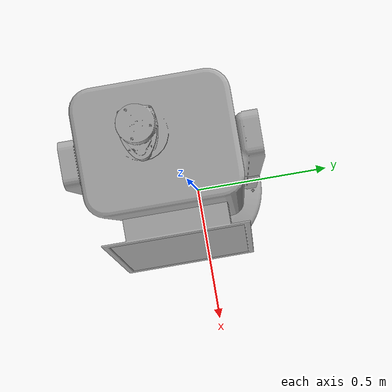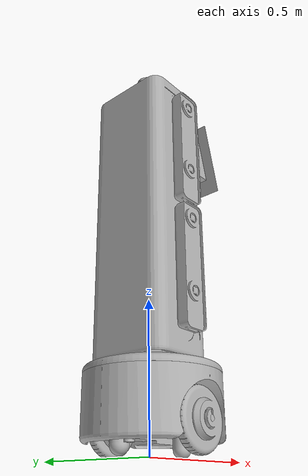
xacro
<?xml version="1.0" ?>
<robot name="bot_2" xmlns:xacro="http://www.ros.org/wiki/xacro">

<xacro:include filename="$(find bot_2_description)/urdf/materials.xacro" />
<xacro:include filename="$(find bot_2_description)/urdf/bot_2.trans" />
<xacro:include filename="$(find bot_2_description)/urdf/bot_2.gazebo" />
<link name="base_link">
  <inertial>
    <origin rpy="0 0 0" xyz="0.03952093569949327 0.011134712474763163 0.24999259249495898"/>
    <mass value="18.472238854712504"/>
    <inertia ixx="1.623002" ixy="0.000759" ixz="-0.069266" iyy="1.715272" iyz="-0.01153" izz="0.489429"/>
  </inertial>
  <visual>
    <origin rpy="0 0 0" xyz="0 0 0"/>
    <geometry>
      <mesh filename="package://bot_2_description/meshes/base_link.stl" scale="0.001 0.001 0.001"/>
    </geometry>
    <material name="silver"/>
  </visual>
  <collision>
    <origin rpy="0 0 0" xyz="0 0 0"/>
    <geometry>
      <mesh filename="package://bot_2_description/meshes/base_link.stl" scale="0.001 0.001 0.001"/>
    </geometry>
  </collision>
</link>

<link name="urdf_ingeneous_lid_v1_1_1_1_1">
  <inertial>
    <origin rpy="0 0 0" xyz="-0.22331002375550324 0.0003080406017243551 0.021289397446100367"/>
    <mass value="2.378023059370701"/>
    <inertia ixx="0.039538" ixy="2.1e-05" ixz="-0.000128" iyy="0.037573" iyz="-2e-06" izz="0.076448"/>
  </inertial>
  <visual>
    <origin rpy="0 0 0" xyz="-0.2488 -0.0093 -0.25"/>
    <geometry>
      <mesh filename="package://bot_2_description/meshes/urdf_ingeneous_lid_v1_1_1_1_1.stl" scale="0.001 0.001 0.001"/>
    </geometry>
    <material name="silver"/>
  </visual>
  <collision>
    <origin rpy="0 0 0" xyz="-0.2488 -0.0093 -0.25"/>
    <geometry>
      <mesh filename="package://bot_2_description/meshes/urdf_ingeneous_lid_v1_1_1_1_1.stl" scale="0.001 0.001 0.001"/>
    </geometry>
  </collision>
</link>

<link name="urdf_ingeneous_top_v2_1_1">
  <inertial>
    <origin rpy="0 0 0" xyz="-0.12028789386411463 -0.00024597163497969143 0.054093174720763026"/>
    <mass value="29.58608844322534"/>
    <inertia ixx="3.383635" ixy="-0.000122" ixz="0.002578" iyy="3.381841" iyz="0.003481" izz="0.658556"/>
  </inertial>
  <visual>
    <origin rpy="0 0 0" xyz="-0.1238 -0.01 -0.7965"/>
    <geometry>
      <mesh filename="package://bot_2_description/meshes/urdf_ingeneous_top_v2_1_1.stl" scale="0.001 0.001 0.001"/>
    </geometry>
    <material name="silver"/>
  </visual>
  <collision>
    <origin rpy="0 0 0" xyz="-0.1238 -0.01 -0.7965"/>
    <geometry>
      <mesh filename="package://bot_2_description/meshes/urdf_ingeneous_top_v2_1_1.stl" scale="0.001 0.001 0.001"/>
    </geometry>
  </collision>
</link>

<link name="monitor_1_1">
  <inertial>
    <origin rpy="0 0 0" xyz="0.04289267568890798 -1.4051260155412137e-16 0.2943220168777885"/>
    <mass value="21.86109745181367"/>
    <inertia ixx="0.138494" ixy="-0.0" ixz="0.006443" iyy="0.059915" iyz="-0.0" izz="0.107749"/>
  </inertial>
  <visual>
    <origin rpy="0 0 0" xyz="-0.1278 -0.01 -0.8"/>
    <geometry>
      <mesh filename="package://bot_2_description/meshes/monitor_1_1.stl" scale="0.001 0.001 0.001"/>
    </geometry>
    <material name="silver"/>
  </visual>
  <collision>
    <origin rpy="0 0 0" xyz="-0.1278 -0.01 -0.8"/>
    <geometry>
      <mesh filename="package://bot_2_description/meshes/monitor_1_1.stl" scale="0.001 0.001 0.001"/>
    </geometry>
  </collision>
</link>

<link name="urdf_ingeneous_Cam_1_v1_1_1_1_1">
  <inertial>
    <origin rpy="0 0 0" xyz="-7.006210069934043e-07 -0.023044520755062747 0.22698371377875126"/>
    <mass value="4.661412651485773"/>
    <inertia ixx="0.071116" ixy="0.0" ixz="0.0" iyy="0.073841" iyz="0.000158" izz="0.004199"/>
  </inertial>
  <visual>
    <origin rpy="0 0 0" xyz="-0.005709 0.141 -0.799575"/>
    <geometry>
      <mesh filename="package://bot_2_description/meshes/urdf_ingeneous_Cam_1_v1_1_1_1_1.stl" scale="0.001 0.001 0.001"/>
    </geometry>
    <material name="silver"/>
  </visual>
  <collision>
    <origin rpy="0 0 0" xyz="-0.005709 0.141 -0.799575"/>
    <geometry>
      <mesh filename="package://bot_2_description/meshes/urdf_ingeneous_Cam_1_v1_1_1_1_1.stl" scale="0.001 0.001 0.001"/>
    </geometry>
  </collision>
</link>

<link name="urdf_ingeneous_Cam_1_v1_1_3_1_1">
  <inertial>
    <origin rpy="0 0 0" xyz="-7.006210070324356e-07 -0.02304452075506272 -0.21801628622125224"/>
    <mass value="4.661412651485775"/>
    <inertia ixx="0.071116" ixy="0.0" ixz="0.0" iyy="0.073841" iyz="0.000158" izz="0.004199"/>
  </inertial>
  <visual>
    <origin rpy="0 0 0" xyz="-0.005709 0.141 -0.799575"/>
    <geometry>
      <mesh filename="package://bot_2_description/meshes/urdf_ingeneous_Cam_1_v1_1_3_1_1.stl" scale="0.001 0.001 0.001"/>
    </geometry>
    <material name="silver"/>
  </visual>
  <collision>
    <origin rpy="0 0 0" xyz="-0.005709 0.141 -0.799575"/>
    <geometry>
      <mesh filename="package://bot_2_description/meshes/urdf_ingeneous_Cam_1_v1_1_3_1_1.stl" scale="0.001 0.001 0.001"/>
    </geometry>
  </collision>
</link>

<link name="urdf_ingeneous_Cam_1_v1_1_4_1_1">
  <inertial>
    <origin rpy="0 0 0" xyz="2.562950976066347e-07 0.023044520759302356 0.22198371375706538"/>
    <mass value="4.661412657768743"/>
    <inertia ixx="0.071116" ixy="0.0" ixz="-0.0" iyy="0.073841" iyz="-0.000158" izz="0.004199"/>
  </inertial>
  <visual>
    <origin rpy="0 0 0" xyz="-0.005709 -0.161 -0.799575"/>
    <geometry>
      <mesh filename="package://bot_2_description/meshes/urdf_ingeneous_Cam_1_v1_1_4_1_1.stl" scale="0.001 0.001 0.001"/>
    </geometry>
    <material name="silver"/>
  </visual>
  <collision>
    <origin rpy="0 0 0" xyz="-0.005709 -0.161 -0.799575"/>
    <geometry>
      <mesh filename="package://bot_2_description/meshes/urdf_ingeneous_Cam_1_v1_1_4_1_1.stl" scale="0.001 0.001 0.001"/>
    </geometry>
  </collision>
</link>

<link name="urdf_ingeneous_Cam_1_v1_1_2_1_1">
  <inertial>
    <origin rpy="0 0 0" xyz="-7.006286795686531e-07 0.023044520759302578 -0.22698392074136708"/>
    <mass value="4.661412657768745"/>
    <inertia ixx="0.071116" ixy="-0.0" ixz="-0.0" iyy="0.073841" iyz="0.000158" izz="0.004199"/>
  </inertial>
  <visual>
    <origin rpy="0 0 0" xyz="-0.005709 -0.161 -0.799575"/>
    <geometry>
      <mesh filename="package://bot_2_description/meshes/urdf_ingeneous_Cam_1_v1_1_2_1_1.stl" scale="0.001 0.001 0.001"/>
    </geometry>
    <material name="silver"/>
  </visual>
  <collision>
    <origin rpy="0 0 0" xyz="-0.005709 -0.161 -0.799575"/>
    <geometry>
      <mesh filename="package://bot_2_description/meshes/urdf_ingeneous_Cam_1_v1_1_2_1_1.stl" scale="0.001 0.001 0.001"/>
    </geometry>
  </collision>
</link>

<link name="RP-lidar-A1_v3_1_1_1">
  <inertial>
    <origin rpy="0 0 0" xyz="0.0034099336096343955 -0.0018742034917625851 0.024214131267010996"/>
    <mass value="0.5411138372935996"/>
    <inertia ixx="0.000231" ixy="-5e-06" ixz="4.4e-05" iyy="0.000448" iyz="2e-06" izz="0.00052"/>
  </inertial>
  <visual>
    <origin rpy="0 0 0" xyz="0.013279 0.011658 -1.3325"/>
    <geometry>
      <mesh filename="package://bot_2_description/meshes/RP-lidar-A1_v3_1_1_1.stl" scale="0.001 0.001 0.001"/>
    </geometry>
    <material name="silver"/>
  </visual>
  <collision>
    <origin rpy="0 0 0" xyz="0.013279 0.011658 -1.3325"/>
    <geometry>
      <mesh filename="package://bot_2_description/meshes/RP-lidar-A1_v3_1_1_1.stl" scale="0.001 0.001 0.001"/>
    </geometry>
  </collision>
</link>

<link name="urdf_ingeneous_castor_2_v1_1_1_1_1">
  <inertial>
    <origin rpy="0 0 0" xyz="-0.02500084400716178 -3.452099717193846e-16 -0.030458086053412367"/>
    <mass value="0.45736562488021687"/>
    <inertia ixx="0.000244" ixy="0.0" ixz="0.0" iyy="0.000244" iyz="0.0" izz="0.000192"/>
  </inertial>
  <visual>
    <origin rpy="0 0 0" xyz="0.0982 -0.0095 -0.07"/>
    <geometry>
      <mesh filename="package://bot_2_description/meshes/urdf_ingeneous_castor_2_v1_1_1_1_1.stl" scale="0.001 0.001 0.001"/>
    </geometry>
    <material name="silver"/>
  </visual>
  <collision>
    <origin rpy="0 0 0" xyz="0.0982 -0.0095 -0.07"/>
    <geometry>
      <mesh filename="package://bot_2_description/meshes/urdf_ingeneous_castor_2_v1_1_1_1_1.stl" scale="0.001 0.001 0.001"/>
    </geometry>
  </collision>
</link>

<link name="urdf_ingeneous_castor_1_v1_1_1_1_1">
  <inertial>
    <origin rpy="0 0 0" xyz="0.025000751002910743 -3.174543961037557e-16 -0.030458086053412374"/>
    <mass value="0.4573656248802163"/>
    <inertia ixx="0.000244" ixy="-0.0" ixz="-0.0" iyy="0.000244" iyz="0.0" izz="0.000192"/>
  </inertial>
  <visual>
    <origin rpy="0 0 0" xyz="-0.1458 -0.0095 -0.07"/>
    <geometry>
      <mesh filename="package://bot_2_description/meshes/urdf_ingeneous_castor_1_v1_1_1_1_1.stl" scale="0.001 0.001 0.001"/>
    </geometry>
    <material name="silver"/>
  </visual>
  <collision>
    <origin rpy="0 0 0" xyz="-0.1458 -0.0095 -0.07"/>
    <geometry>
      <mesh filename="package://bot_2_description/meshes/urdf_ingeneous_castor_1_v1_1_1_1_1.stl" scale="0.001 0.001 0.001"/>
    </geometry>
  </collision>
</link>

<link name="right_wheel_1_1">
  <inertial>
    <origin rpy="0 0 0" xyz="-1.4117580839072275e-05 -0.04910432960929115 -5.388889840679534e-05"/>
    <mass value="1.9563252284875923"/>
    <inertia ixx="0.004739" ixy="1e-06" ixz="0.0" iyy="0.008037" iyz="4e-06" izz="0.00474"/>
  </inertial>
  <visual>
    <origin rpy="0 0 0" xyz="-0.0238 -0.2365 -0.1"/>
    <geometry>
      <mesh filename="package://bot_2_description/meshes/right_wheel_1_1.stl" scale="0.001 0.001 0.001"/>
    </geometry>
    <material name="silver"/>
  </visual>
  <collision>
    <origin rpy="0 0 0" xyz="-0.0238 -0.2365 -0.1"/>
    <geometry>
      <mesh filename="package://bot_2_description/meshes/right_wheel_1_1.stl" scale="0.001 0.001 0.001"/>
    </geometry>
  </collision>
</link>

<link name="left_wheel_1_1">
  <inertial>
    <origin rpy="0 0 0" xyz="-1.4151512635406788e-05 0.04910413098013053 -5.388874280765066e-05"/>
    <mass value="1.9541398145859004"/>
    <inertia ixx="0.004735" ixy="-1e-06" ixz="0.0" iyy="0.008031" iyz="-4e-06" izz="0.004736"/>
  </inertial>
  <visual>
    <origin rpy="0 0 0" xyz="-0.0238 0.2175 -0.1"/>
    <geometry>
      <mesh filename="package://bot_2_description/meshes/left_wheel_1_1.stl" scale="0.001 0.001 0.001"/>
    </geometry>
    <material name="silver"/>
  </visual>
  <collision>
    <origin rpy="0 0 0" xyz="-0.0238 0.2175 -0.1"/>
    <geometry>
      <mesh filename="package://bot_2_description/meshes/left_wheel_1_1.stl" scale="0.001 0.001 0.001"/>
    </geometry>
  </collision>
</link>

<link name="dispaly_screen_1_1">
  <inertial>
    <origin rpy="0 0 0" xyz="0.0004847687515193433 2.499736528882579e-15 0.0001241180692603816"/>
    <mass value="0.5248195999999874"/>
    <inertia ixx="0.005727" ixy="0.0" ixz="0.000626" iyy="0.002604" iyz="-0.0" izz="0.003444"/>
  </inertial>
  <visual>
    <origin rpy="0 0 0" xyz="-0.209562 -0.01 -1.100248"/>
    <geometry>
      <mesh filename="package://bot_2_description/meshes/dispaly_screen_1_1.stl" scale="0.001 0.001 0.001"/>
    </geometry>
    <material name="silver"/>
  </visual>
  <collision>
    <origin rpy="0 0 0" xyz="-0.209562 -0.01 -1.100248"/>
    <geometry>
      <mesh filename="package://bot_2_description/meshes/dispaly_screen_1_1.stl" scale="0.001 0.001 0.001"/>
    </geometry>
  </collision>
</link>

<joint name="lid" type="fixed">
  <origin rpy="0 0 0" xyz="0.2488 0.0093 0.25"/>
  <parent link="base_link"/>
  <child link="urdf_ingeneous_lid_v1_1_1_1_1"/>
</joint>

<joint name="top" type="fixed">
  <origin rpy="0 0 0" xyz="0.1238 0.01 0.7965"/>
  <parent link="base_link"/>
  <child link="urdf_ingeneous_top_v2_1_1"/>
</joint>

<joint name="monitor" type="fixed">
  <origin rpy="0 0 0" xyz="0.004 0.0 0.0035"/>
  <parent link="urdf_ingeneous_top_v2_1_1"/>
  <child link="monitor_1_1"/>
</joint>

<joint name="cam1" type="fixed">
  <origin rpy="0 0 0" xyz="-0.118091 -0.151 0.003075"/>
  <parent link="urdf_ingeneous_top_v2_1_1"/>
  <child link="urdf_ingeneous_Cam_1_v1_1_1_1_1"/>
</joint>

<joint name="c2" type="fixed">
  <origin rpy="0 0 0" xyz="-0.118091 -0.151 0.003075"/>
  <parent link="urdf_ingeneous_top_v2_1_1"/>
  <child link="urdf_ingeneous_Cam_1_v1_1_3_1_1"/>
</joint>

<joint name="c3" type="fixed">
  <origin rpy="0 0 0" xyz="-0.118091 0.151 0.003075"/>
  <parent link="urdf_ingeneous_top_v2_1_1"/>
  <child link="urdf_ingeneous_Cam_1_v1_1_4_1_1"/>
</joint>

<joint name="c4" type="fixed">
  <origin rpy="0 0 0" xyz="-0.118091 0.151 0.003075"/>
  <parent link="urdf_ingeneous_top_v2_1_1"/>
  <child link="urdf_ingeneous_Cam_1_v1_1_2_1_1"/>
</joint>

<joint name="lidar" type="fixed">
  <origin rpy="0 0 0" xyz="-0.137079 -0.021658 0.536"/>
  <parent link="urdf_ingeneous_top_v2_1_1"/>
  <child link="RP-lidar-A1_v3_1_1_1"/>
</joint>

<joint name="f_castor" type="fixed">
  <origin rpy="0 0 0" xyz="-0.0982 0.0095 0.07"/>
  <parent link="base_link"/>
  <child link="urdf_ingeneous_castor_2_v1_1_1_1_1"/>
</joint>

<joint name="b_castor" type="fixed">
  <origin rpy="0 0 0" xyz="0.1458 0.0095 0.07"/>
  <parent link="base_link"/>
  <child link="urdf_ingeneous_castor_1_v1_1_1_1_1"/>
</joint>

<joint name="Rev52" type="revolute">
  <origin rpy="0 0 0" xyz="0.0238 0.2365 0.1"/>
  <parent link="base_link"/>
  <child link="right_wheel_1_1"/>
  <axis xyz="0.0 -1.0 0.0"/>
  <limit effort="100" lower="0.0" upper="6.283185" velocity="100"/>
</joint>

<joint name="Rev53" type="revolute">
  <origin rpy="0 0 0" xyz="0.0238 -0.2175 0.1"/>
  <parent link="base_link"/>
  <child link="left_wheel_1_1"/>
  <axis xyz="0.0 -1.0 0.0"/>
  <limit effort="100" lower="0.0" upper="6.283185" velocity="100"/>
</joint>

<joint name="screen" type="fixed">
  <origin rpy="0 0 0" xyz="0.081762 0.0 0.300248"/>
  <parent link="monitor_1_1"/>
  <child link="dispaly_screen_1_1"/>
</joint>

</robot>

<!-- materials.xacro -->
<robot name="bot_2" xmlns:xacro="http://www.ros.org/wiki/xacro" >

<material name="silver">
  <color rgba="0.700 0.700 0.700 1.000"/>
</material>

</robot>

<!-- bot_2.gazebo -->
<robot name="bot_2" xmlns:xacro="http://www.ros.org/wiki/xacro" >

<xacro:property name="body_color" value="Gazebo/Silver" />

<gazebo reference="base_link">
  <material>${body_color}</material>
  <mu1>1.0</mu1>
  <mu2>1.0</mu2>
  <selfCollide>true</selfCollide>
  <gravity>true</gravity>
</gazebo>

<gazebo reference="urdf_ingeneous_lid_v1_1_1_1_1">
  <material>${body_color}</material>
  <mu1>1.0</mu1>
  <mu2>1.0</mu2>
  <selfCollide>true</selfCollide>
</gazebo>

<gazebo reference="urdf_ingeneous_top_v2_1_1">
  <material>${body_color}</material>
  <mu1>1.0</mu1>
  <mu2>1.0</mu2>
  <selfCollide>true</selfCollide>
</gazebo>

<gazebo reference="monitor_1_1">
  <material>${body_color}</material>
  <mu1>1.0</mu1>
  <mu2>1.0</mu2>
  <selfCollide>true</selfCollide>
</gazebo>

<gazebo reference="urdf_ingeneous_Cam_1_v1_1_1_1_1">
  <material>${body_color}</material>
  <mu1>1.0</mu1>
  <mu2>1.0</mu2>
  <selfCollide>true</selfCollide>
</gazebo>

<gazebo reference="urdf_ingeneous_Cam_1_v1_1_3_1_1">
  <material>${body_color}</material>
  <mu1>1.0</mu1>
  <mu2>1.0</mu2>
  <selfCollide>true</selfCollide>
</gazebo>

<gazebo reference="urdf_ingeneous_Cam_1_v1_1_4_1_1">
  <material>${body_color}</material>
  <mu1>1.0</mu1>
  <mu2>1.0</mu2>
  <selfCollide>true</selfCollide>
</gazebo>

<gazebo reference="urdf_ingeneous_Cam_1_v1_1_2_1_1">
  <material>${body_color}</material>
  <mu1>1.0</mu1>
  <mu2>1.0</mu2>
  <selfCollide>true</selfCollide>
</gazebo>

<gazebo reference="RP-lidar-A1_v3_1_1_1">
  <material>${body_color}</material>
  <mu1>1.0</mu1>
  <mu2>1.0</mu2>
  <selfCollide>true</selfCollide>
</gazebo>

<gazebo reference="urdf_ingeneous_castor_2_v1_1_1_1_1">
  <material>${body_color}</material>
  <mu1>0.1</mu1>
  <mu2>0.1</mu2>
  <selfCollide>true</selfCollide>
</gazebo>

<gazebo reference="urdf_ingeneous_castor_1_v1_1_1_1_1">
  <material>${body_color}</material>
  <mu1>0.1</mu1>
  <mu2>0.1</mu2>
  <selfCollide>true</selfCollide>
</gazebo>

<gazebo reference="right_wheel_1_1">
  <material>${body_color}</material>
  <mu1>500.0</mu1>
  <mu2>500.0</mu2>
  <selfCollide>true</selfCollide>
</gazebo>

<gazebo reference="left_wheel_1_1">
  <material>${body_color}</material>
  <mu1>500.0</mu1>
  <mu2>500.0</mu2>
  <selfCollide>true</selfCollide>
</gazebo>

<gazebo reference="dispaly_screen_1_1">
  <material>${body_color}</material>
  <mu1>1.0</mu1>
  <mu2>1.0</mu2>
  <selfCollide>true</selfCollide>
</gazebo>

  <!-- ROS Control -->

<gazebo>
  <plugin filename="libgazebo_ros_control.so" name="gazebo_ros_control"/>
  <robotNamespace>/bot_2</robotNamespace>
  <robotSimType>gazebo_ros_control/DefaultRobotHWSim</robotSimType>
  <legacyModeNS>true</legacyModeNS>
</gazebo>

<gazebo>
  <plugin name="turtlebot3_burger_controller" filename="libgazebo_ros_diff_drive.so">
    <commandTopic>cmd_vel</commandTopic>
    <odometryTopic>odom</odometryTopic>
    <odometryFrame>odom</odometryFrame>
    <odometrySource>world</odometrySource>
    <publishOdomTF>true</publishOdomTF>
    <robotBaseFrame>base_link</robotBaseFrame>
    <publishWheelTF>false</publishWheelTF>
    <publishTf>true</publishTf>
    <publishWheelJointState>true</publishWheelJointState>
    <legacyMode>false</legacyMode>
    <updateRate>30</updateRate>
    <leftJoint>Rev53</leftJoint>
    <rightJoint>Rev52</rightJoint>
    <wheelSeparation>0.160</wheelSeparation>
    <wheelDiameter>0.066</wheelDiameter>
    <wheelAcceleration>1</wheelAcceleration>
    <wheelTorque>10</wheelTorque>
    <rosDebugLevel>na</rosDebugLevel>
  </plugin>
</gazebo>

</robot>
